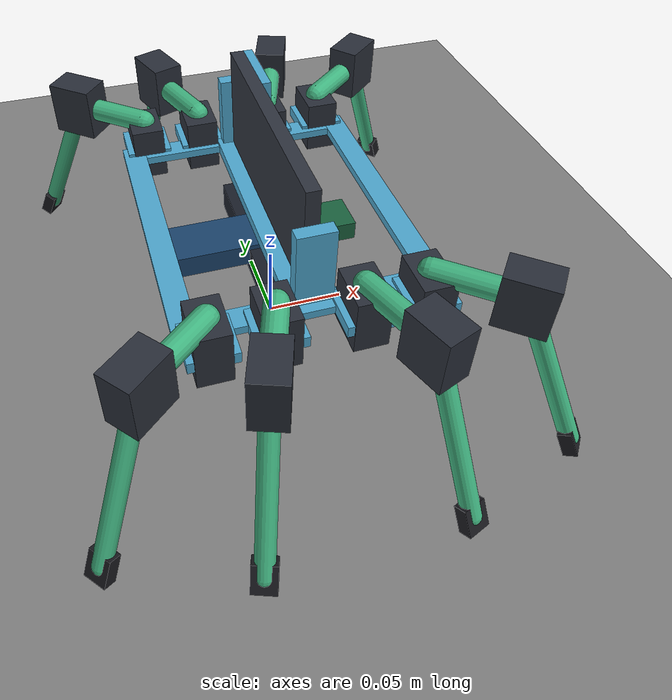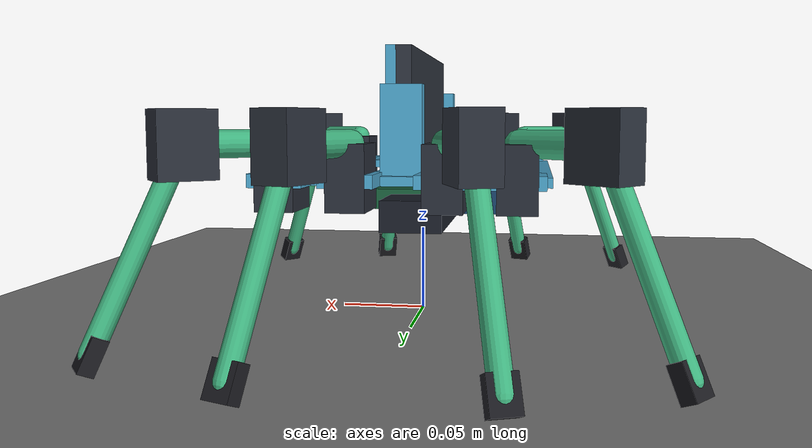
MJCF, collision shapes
<?xml version="1.0" encoding="utf-8"?>
<!-- Generated by generate_model.py; collision profile: validation. -->
<mujoco model="arachne15_validation">
  <compiler angle="radian" meshdir="../../../Sources/Robotics/Assets/arachne15/meshes" autolimits="true"/>
  <option timestep="0.002" gravity="0 0 -9.80665" integrator="implicitfast"/>
  <default>
    <default class="visual">
      <geom contype="0" conaffinity="0" group="2" rgba="0.18 0.22 0.27 1"/>
    </default>
    <default class="collision">
      <geom friction="0.55 0.005 0.0001" condim="3" rgba="0.3 0.65 0.8 0.25"/>
    </default>
    <default class="footprint_collision">
      <geom friction="0.65 0.005 0.0001" condim="3" rgba="0.25 0.7 0.5 0.25"/>
    </default>
    <default class="foot_collision">
      <geom friction="0.9 0.01 0.0002" condim="4" rgba="0.1 0.1 0.12 0.35"/>
    </default>
    <default class="hip_joint">
      <joint type="hinge" range="-0.55 0.55" damping="0.02" armature="0.00005"/>
    </default>
    <default class="knee_joint">
      <joint type="hinge" range="-0.70 0.90" damping="0.02" armature="0.00005"/>
    </default>
  </default>
  <asset>
    <mesh name="chassis_visual" file="chassis.stl" scale="0.001 0.001 0.001"/>
    <mesh name="phone_guide_visual" file="phone_guide.stl" scale="0.001 0.001 0.001"/>
    <mesh name="battery_cradle_visual" file="battery_cradle.stl" scale="0.001 0.001 0.001"/>
    <mesh name="coxa_visual" file="coxa_link.stl" scale="0.001 0.001 0.001"/>
    <mesh name="tibia_visual" file="tibia_link.stl" scale="0.001 0.001 0.001"/>
    <mesh name="foot_visual" file="foot_pad.stl" scale="0.001 0.001 0.001"/>
  </asset>
  <worldbody>
    <geom name="floor" type="plane" size="2 2 0.05" friction="0.9 0.01 0.0002"/>
    <body name="base" pos="0 0 0.0827829838">
      <freejoint/>
      <inertial pos="-0.00114203123 -2.62049155e-19 0.00559625308" mass="0.82748" diaginertia="0.00344118531 0.00132602737 0.00387924709"/>
      <geom name="chassis_visual" class="visual" type="mesh" mesh="chassis_visual"/>
      <geom name="guide_left_visual" class="visual" type="mesh" mesh="phone_guide_visual" pos="0 0.0779 0"/>
      <geom name="guide_right_visual" class="visual" type="mesh" mesh="phone_guide_visual" pos="0 -0.0779 0" quat="0 0 0 1"/>
      <geom name="battery_cradle_visual" class="visual" type="mesh" mesh="battery_cradle_visual" pos="0 0 -0.028"/>
      <geom name="iphone_visual" class="visual" type="box" size="0.004125 0.0733 0.0353" pos="0 0 0.0373" rgba="0.18 0.2 0.24 1"/>
      <geom name="hip_servo_right_0_visual" class="visual" type="box" size="0.01 0.0145 0.017" pos="-0.06 -0.092 0.005" rgba="0.16 0.18 0.22 1"/>
      <geom name="hip_servo_left_0_visual" class="visual" type="box" size="0.01 0.0145 0.017" pos="-0.06 0.092 0.005" rgba="0.16 0.18 0.22 1"/>
      <geom name="hip_servo_right_1_visual" class="visual" type="box" size="0.01 0.0145 0.017" pos="-0.024 -0.092 0.005" rgba="0.16 0.18 0.22 1"/>
      <geom name="hip_servo_left_1_visual" class="visual" type="box" size="0.01 0.0145 0.017" pos="-0.024 0.092 0.005" rgba="0.16 0.18 0.22 1"/>
      <geom name="hip_servo_right_2_visual" class="visual" type="box" size="0.01 0.0145 0.017" pos="0.024 -0.092 0.005" rgba="0.16 0.18 0.22 1"/>
      <geom name="hip_servo_left_2_visual" class="visual" type="box" size="0.01 0.0145 0.017" pos="0.024 0.092 0.005" rgba="0.16 0.18 0.22 1"/>
      <geom name="hip_servo_right_3_visual" class="visual" type="box" size="0.01 0.0145 0.017" pos="0.06 -0.092 0.005" rgba="0.16 0.18 0.22 1"/>
      <geom name="hip_servo_left_3_visual" class="visual" type="box" size="0.01 0.0145 0.017" pos="0.06 0.092 0.005" rgba="0.16 0.18 0.22 1"/>
      <geom name="battery_visual" class="visual" type="box" size="0.0175 0.0525 0.009" pos="0 0 -0.02" rgba="0.10 0.12 0.16 1"/>
      <geom name="bec_visual" class="visual" type="box" size="0.0275 0.015 0.007" pos="-0.034 0 -0.015" rgba="0.10 0.26 0.42 1"/>
      <geom name="control_bridge_visual" class="visual" type="box" size="0.0275 0.0125 0.006" pos="0.024 0 -0.014" rgba="0.10 0.38 0.24 1"/>
      <geom name="base_x_rear" class="collision" type="box" size="0.007 0.088 0.0025" pos="-0.07 0 0.0025" friction="0.55 0.005 0.0001"/>
      <geom name="base_x_front" class="collision" type="box" size="0.007 0.088 0.0025" pos="0.07 0 0.0025" friction="0.55 0.005 0.0001"/>
      <geom name="base_y_right" class="collision" type="box" size="0.063 0.007 0.0025" pos="0 -0.081 0.0025" friction="0.55 0.005 0.0001"/>
      <geom name="base_y_left" class="collision" type="box" size="0.063 0.007 0.0025" pos="0 0.081 0.0025" friction="0.55 0.005 0.0001"/>
      <geom name="phone_spine" class="collision" type="box" size="0.014 0.08 0.0035" pos="0 0 0.0035" friction="0.55 0.005 0.0001"/>
      <geom name="iphone_body" class="collision" type="box" size="0.004125 0.0733 0.0353" pos="0 0 0.0373" friction="0.35 0.005 0.0001"/>
      <geom name="battery" class="collision" type="box" size="0.0175 0.0525 0.009" pos="0 0 -0.02" friction="0.55 0.005 0.0001"/>
      <geom name="hip_pod_right_0" class="collision" type="box" size="0.014 0.014 0.0035" pos="-0.06 -0.092 0.0035" friction="0.55 0.005 0.0001"/>
      <geom name="hip_servo_right_0" class="collision" type="box" size="0.01 0.0145 0.017" pos="-0.06 -0.092 0.005" friction="0.55 0.005 0.0001"/>
      <geom name="hip_pod_left_0" class="collision" type="box" size="0.014 0.014 0.0035" pos="-0.06 0.092 0.0035" friction="0.55 0.005 0.0001"/>
      <geom name="hip_servo_left_0" class="collision" type="box" size="0.01 0.0145 0.017" pos="-0.06 0.092 0.005" friction="0.55 0.005 0.0001"/>
      <geom name="hip_pod_right_1" class="collision" type="box" size="0.014 0.014 0.0035" pos="-0.024 -0.092 0.0035" friction="0.55 0.005 0.0001"/>
      <geom name="hip_servo_right_1" class="collision" type="box" size="0.01 0.0145 0.017" pos="-0.024 -0.092 0.005" friction="0.55 0.005 0.0001"/>
      <geom name="hip_pod_left_1" class="collision" type="box" size="0.014 0.014 0.0035" pos="-0.024 0.092 0.0035" friction="0.55 0.005 0.0001"/>
      <geom name="hip_servo_left_1" class="collision" type="box" size="0.01 0.0145 0.017" pos="-0.024 0.092 0.005" friction="0.55 0.005 0.0001"/>
      <geom name="hip_pod_right_2" class="collision" type="box" size="0.014 0.014 0.0035" pos="0.024 -0.092 0.0035" friction="0.55 0.005 0.0001"/>
      <geom name="hip_servo_right_2" class="collision" type="box" size="0.01 0.0145 0.017" pos="0.024 -0.092 0.005" friction="0.55 0.005 0.0001"/>
      <geom name="hip_pod_left_2" class="collision" type="box" size="0.014 0.014 0.0035" pos="0.024 0.092 0.0035" friction="0.55 0.005 0.0001"/>
      <geom name="hip_servo_left_2" class="collision" type="box" size="0.01 0.0145 0.017" pos="0.024 0.092 0.005" friction="0.55 0.005 0.0001"/>
      <geom name="hip_pod_right_3" class="collision" type="box" size="0.014 0.014 0.0035" pos="0.06 -0.092 0.0035" friction="0.55 0.005 0.0001"/>
      <geom name="hip_servo_right_3" class="collision" type="box" size="0.01 0.0145 0.017" pos="0.06 -0.092 0.005" friction="0.55 0.005 0.0001"/>
      <geom name="hip_pod_left_3" class="collision" type="box" size="0.014 0.014 0.0035" pos="0.06 0.092 0.0035" friction="0.55 0.005 0.0001"/>
      <geom name="hip_servo_left_3" class="collision" type="box" size="0.01 0.0145 0.017" pos="0.06 0.092 0.005" friction="0.55 0.005 0.0001"/>
      <geom name="guide_left" class="collision" type="box" size="0.011 0.004 0.026" pos="0 0.0779 0.026" friction="0.55 0.005 0.0001"/>
      <geom name="guide_right" class="collision" type="box" size="0.011 0.004 0.026" pos="0 -0.0779 0.026" friction="0.55 0.005 0.0001"/>
      <geom name="camera_plateau" class="collision" type="box" size="0.00273 0.021 0.018" pos="0.006855 0.0523 0.0546" friction="0.3 0.005 0.0001"/>
      <geom name="bec" class="collision" type="box" size="0.0275 0.015 0.007" pos="-0.034 0 -0.015" friction="0.55 0.005 0.0001"/>
      <geom name="control_bridge" class="collision" type="box" size="0.0275 0.0125 0.006" pos="0.024 0 -0.014" friction="0.55 0.005 0.0001"/>
      <body name="right_rear_coxa" pos="-0.06 -0.092 0.022" quat="0.342020143 0 0 -0.939692621">
        <inertial pos="0.0446916845 0 -0.000421964667" mass="0.035548" diaginertia="4.40428753e-06 9.52330839e-06 9.12177953e-06"/>
        <joint name="right_rear_hip" class="hip_joint" axis="0 0 1"/>
        <geom name="right_rear_coxa_visual" class="visual" type="mesh" mesh="coxa_visual" pos="0 0 -0.0035"/>
        <geom name="right_rear_coxa_collision" class="footprint_collision" type="capsule" size="0.007" fromto="0 0 0 0.05 0 0"/>
      <geom name="right_rear_knee_servo_visual" class="visual" type="box" size="0.01 0.0145 0.017" pos="0.05 0 0" quat="0.707106781 0 0 0.707106781" rgba="0.16 0.18 0.22 1"/>
        <geom name="right_rear_knee_servo" class="collision" type="box" size="0.01 0.0145 0.017" pos="0.05 0 0" quat="0.707106781 0 0 0.707106781"/>
        <body name="right_rear_tibia" pos="0.05 0 0" quat="0.843391446 0 0.537299608 0">
          <inertial pos="0.0531758156 0 0.000739809129" mass="0.013517" diaginertia="3.59758367e-07 1.88701864e-05 1.89852491e-05"/>
          <joint name="right_rear_knee" class="knee_joint" axis="0 1 0"/>
          <geom name="right_rear_tibia_visual" class="visual" type="mesh" mesh="tibia_visual" pos="0 0 -0.0045"/>
          <geom name="right_rear_foot_visual" class="visual" type="mesh" mesh="foot_visual" pos="0.105 0 0"/>
          <geom name="right_rear_tibia_collision" class="footprint_collision" type="capsule" size="0.0055" fromto="0.008 0 0 0.105 0 0"/>
          <geom name="right_rear_foot_collision" class="foot_collision" type="box" size="0.00875 0.007 0.004" pos="0.105 0 0"/>
        </body>
      </body>
      <body name="right_mid_rear_coxa" pos="-0.024 -0.092 0.022" quat="0.573576436 0 0 -0.819152044">
        <inertial pos="0.0446916845 0 -0.000421964667" mass="0.035548" diaginertia="4.40428753e-06 9.52330839e-06 9.12177953e-06"/>
        <joint name="right_mid_rear_hip" class="hip_joint" axis="0 0 1"/>
        <geom name="right_mid_rear_coxa_visual" class="visual" type="mesh" mesh="coxa_visual" pos="0 0 -0.0035"/>
        <geom name="right_mid_rear_coxa_collision" class="footprint_collision" type="capsule" size="0.007" fromto="0 0 0 0.05 0 0"/>
      <geom name="right_mid_rear_knee_servo_visual" class="visual" type="box" size="0.01 0.0145 0.017" pos="0.05 0 0" quat="0.707106781 0 0 0.707106781" rgba="0.16 0.18 0.22 1"/>
        <geom name="right_mid_rear_knee_servo" class="collision" type="box" size="0.01 0.0145 0.017" pos="0.05 0 0" quat="0.707106781 0 0 0.707106781"/>
        <body name="right_mid_rear_tibia" pos="0.05 0 0" quat="0.843391446 0 0.537299608 0">
          <inertial pos="0.0531758156 0 0.000739809129" mass="0.013517" diaginertia="3.59758367e-07 1.88701864e-05 1.89852491e-05"/>
          <joint name="right_mid_rear_knee" class="knee_joint" axis="0 1 0"/>
          <geom name="right_mid_rear_tibia_visual" class="visual" type="mesh" mesh="tibia_visual" pos="0 0 -0.0045"/>
          <geom name="right_mid_rear_foot_visual" class="visual" type="mesh" mesh="foot_visual" pos="0.105 0 0"/>
          <geom name="right_mid_rear_tibia_collision" class="footprint_collision" type="capsule" size="0.0055" fromto="0.008 0 0 0.105 0 0"/>
          <geom name="right_mid_rear_foot_collision" class="foot_collision" type="box" size="0.00875 0.007 0.004" pos="0.105 0 0"/>
        </body>
      </body>
      <body name="right_mid_front_coxa" pos="0.024 -0.092 0.022" quat="0.819152044 0 0 -0.573576436">
        <inertial pos="0.0446916845 0 -0.000421964667" mass="0.035548" diaginertia="4.40428753e-06 9.52330839e-06 9.12177953e-06"/>
        <joint name="right_mid_front_hip" class="hip_joint" axis="0 0 1"/>
        <geom name="right_mid_front_coxa_visual" class="visual" type="mesh" mesh="coxa_visual" pos="0 0 -0.0035"/>
        <geom name="right_mid_front_coxa_collision" class="footprint_collision" type="capsule" size="0.007" fromto="0 0 0 0.05 0 0"/>
      <geom name="right_mid_front_knee_servo_visual" class="visual" type="box" size="0.01 0.0145 0.017" pos="0.05 0 0" quat="0.707106781 0 0 0.707106781" rgba="0.16 0.18 0.22 1"/>
        <geom name="right_mid_front_knee_servo" class="collision" type="box" size="0.01 0.0145 0.017" pos="0.05 0 0" quat="0.707106781 0 0 0.707106781"/>
        <body name="right_mid_front_tibia" pos="0.05 0 0" quat="0.843391446 0 0.537299608 0">
          <inertial pos="0.0531758156 0 0.000739809129" mass="0.013517" diaginertia="3.59758367e-07 1.88701864e-05 1.89852491e-05"/>
          <joint name="right_mid_front_knee" class="knee_joint" axis="0 1 0"/>
          <geom name="right_mid_front_tibia_visual" class="visual" type="mesh" mesh="tibia_visual" pos="0 0 -0.0045"/>
          <geom name="right_mid_front_foot_visual" class="visual" type="mesh" mesh="foot_visual" pos="0.105 0 0"/>
          <geom name="right_mid_front_tibia_collision" class="footprint_collision" type="capsule" size="0.0055" fromto="0.008 0 0 0.105 0 0"/>
          <geom name="right_mid_front_foot_collision" class="foot_collision" type="box" size="0.00875 0.007 0.004" pos="0.105 0 0"/>
        </body>
      </body>
      <body name="right_front_coxa" pos="0.06 -0.092 0.022" quat="0.939692621 0 0 -0.342020143">
        <inertial pos="0.0446916845 0 -0.000421964667" mass="0.035548" diaginertia="4.40428753e-06 9.52330839e-06 9.12177953e-06"/>
        <joint name="right_front_hip" class="hip_joint" axis="0 0 1"/>
        <geom name="right_front_coxa_visual" class="visual" type="mesh" mesh="coxa_visual" pos="0 0 -0.0035"/>
        <geom name="right_front_coxa_collision" class="footprint_collision" type="capsule" size="0.007" fromto="0 0 0 0.05 0 0"/>
      <geom name="right_front_knee_servo_visual" class="visual" type="box" size="0.01 0.0145 0.017" pos="0.05 0 0" quat="0.707106781 0 0 0.707106781" rgba="0.16 0.18 0.22 1"/>
        <geom name="right_front_knee_servo" class="collision" type="box" size="0.01 0.0145 0.017" pos="0.05 0 0" quat="0.707106781 0 0 0.707106781"/>
        <body name="right_front_tibia" pos="0.05 0 0" quat="0.843391446 0 0.537299608 0">
          <inertial pos="0.0531758156 0 0.000739809129" mass="0.013517" diaginertia="3.59758367e-07 1.88701864e-05 1.89852491e-05"/>
          <joint name="right_front_knee" class="knee_joint" axis="0 1 0"/>
          <geom name="right_front_tibia_visual" class="visual" type="mesh" mesh="tibia_visual" pos="0 0 -0.0045"/>
          <geom name="right_front_foot_visual" class="visual" type="mesh" mesh="foot_visual" pos="0.105 0 0"/>
          <geom name="right_front_tibia_collision" class="footprint_collision" type="capsule" size="0.0055" fromto="0.008 0 0 0.105 0 0"/>
          <geom name="right_front_foot_collision" class="foot_collision" type="box" size="0.00875 0.007 0.004" pos="0.105 0 0"/>
        </body>
      </body>
      <body name="left_rear_coxa" pos="-0.06 0.092 0.022" quat="0.342020143 0 0 0.939692621">
        <inertial pos="0.0446916845 0 -0.000421964667" mass="0.035548" diaginertia="4.40428753e-06 9.52330839e-06 9.12177953e-06"/>
        <joint name="left_rear_hip" class="hip_joint" axis="0 0 1"/>
        <geom name="left_rear_coxa_visual" class="visual" type="mesh" mesh="coxa_visual" pos="0 0 -0.0035"/>
        <geom name="left_rear_coxa_collision" class="footprint_collision" type="capsule" size="0.007" fromto="0 0 0 0.05 0 0"/>
      <geom name="left_rear_knee_servo_visual" class="visual" type="box" size="0.01 0.0145 0.017" pos="0.05 0 0" quat="0.707106781 0 0 0.707106781" rgba="0.16 0.18 0.22 1"/>
        <geom name="left_rear_knee_servo" class="collision" type="box" size="0.01 0.0145 0.017" pos="0.05 0 0" quat="0.707106781 0 0 0.707106781"/>
        <body name="left_rear_tibia" pos="0.05 0 0" quat="0.843391446 0 0.537299608 0">
          <inertial pos="0.0531758156 0 0.000739809129" mass="0.013517" diaginertia="3.59758367e-07 1.88701864e-05 1.89852491e-05"/>
          <joint name="left_rear_knee" class="knee_joint" axis="0 1 0"/>
          <geom name="left_rear_tibia_visual" class="visual" type="mesh" mesh="tibia_visual" pos="0 0 -0.0045"/>
          <geom name="left_rear_foot_visual" class="visual" type="mesh" mesh="foot_visual" pos="0.105 0 0"/>
          <geom name="left_rear_tibia_collision" class="footprint_collision" type="capsule" size="0.0055" fromto="0.008 0 0 0.105 0 0"/>
          <geom name="left_rear_foot_collision" class="foot_collision" type="box" size="0.00875 0.007 0.004" pos="0.105 0 0"/>
        </body>
      </body>
      <body name="left_mid_rear_coxa" pos="-0.024 0.092 0.022" quat="0.573576436 0 0 0.819152044">
        <inertial pos="0.0446916845 0 -0.000421964667" mass="0.035548" diaginertia="4.40428753e-06 9.52330839e-06 9.12177953e-06"/>
        <joint name="left_mid_rear_hip" class="hip_joint" axis="0 0 1"/>
        <geom name="left_mid_rear_coxa_visual" class="visual" type="mesh" mesh="coxa_visual" pos="0 0 -0.0035"/>
        <geom name="left_mid_rear_coxa_collision" class="footprint_collision" type="capsule" size="0.007" fromto="0 0 0 0.05 0 0"/>
      <geom name="left_mid_rear_knee_servo_visual" class="visual" type="box" size="0.01 0.0145 0.017" pos="0.05 0 0" quat="0.707106781 0 0 0.707106781" rgba="0.16 0.18 0.22 1"/>
        <geom name="left_mid_rear_knee_servo" class="collision" type="box" size="0.01 0.0145 0.017" pos="0.05 0 0" quat="0.707106781 0 0 0.707106781"/>
        <body name="left_mid_rear_tibia" pos="0.05 0 0" quat="0.843391446 0 0.537299608 0">
          <inertial pos="0.0531758156 0 0.000739809129" mass="0.013517" diaginertia="3.59758367e-07 1.88701864e-05 1.89852491e-05"/>
          <joint name="left_mid_rear_knee" class="knee_joint" axis="0 1 0"/>
          <geom name="left_mid_rear_tibia_visual" class="visual" type="mesh" mesh="tibia_visual" pos="0 0 -0.0045"/>
          <geom name="left_mid_rear_foot_visual" class="visual" type="mesh" mesh="foot_visual" pos="0.105 0 0"/>
          <geom name="left_mid_rear_tibia_collision" class="footprint_collision" type="capsule" size="0.0055" fromto="0.008 0 0 0.105 0 0"/>
          <geom name="left_mid_rear_foot_collision" class="foot_collision" type="box" size="0.00875 0.007 0.004" pos="0.105 0 0"/>
        </body>
      </body>
      <body name="left_mid_front_coxa" pos="0.024 0.092 0.022" quat="0.819152044 0 0 0.573576436">
        <inertial pos="0.0446916845 0 -0.000421964667" mass="0.035548" diaginertia="4.40428753e-06 9.52330839e-06 9.12177953e-06"/>
        <joint name="left_mid_front_hip" class="hip_joint" axis="0 0 1"/>
        <geom name="left_mid_front_coxa_visual" class="visual" type="mesh" mesh="coxa_visual" pos="0 0 -0.0035"/>
        <geom name="left_mid_front_coxa_collision" class="footprint_collision" type="capsule" size="0.007" fromto="0 0 0 0.05 0 0"/>
      <geom name="left_mid_front_knee_servo_visual" class="visual" type="box" size="0.01 0.0145 0.017" pos="0.05 0 0" quat="0.707106781 0 0 0.707106781" rgba="0.16 0.18 0.22 1"/>
        <geom name="left_mid_front_knee_servo" class="collision" type="box" size="0.01 0.0145 0.017" pos="0.05 0 0" quat="0.707106781 0 0 0.707106781"/>
        <body name="left_mid_front_tibia" pos="0.05 0 0" quat="0.843391446 0 0.537299608 0">
          <inertial pos="0.0531758156 0 0.000739809129" mass="0.013517" diaginertia="3.59758367e-07 1.88701864e-05 1.89852491e-05"/>
          <joint name="left_mid_front_knee" class="knee_joint" axis="0 1 0"/>
          <geom name="left_mid_front_tibia_visual" class="visual" type="mesh" mesh="tibia_visual" pos="0 0 -0.0045"/>
          <geom name="left_mid_front_foot_visual" class="visual" type="mesh" mesh="foot_visual" pos="0.105 0 0"/>
          <geom name="left_mid_front_tibia_collision" class="footprint_collision" type="capsule" size="0.0055" fromto="0.008 0 0 0.105 0 0"/>
          <geom name="left_mid_front_foot_collision" class="foot_collision" type="box" size="0.00875 0.007 0.004" pos="0.105 0 0"/>
        </body>
      </body>
      <body name="left_front_coxa" pos="0.06 0.092 0.022" quat="0.939692621 0 0 0.342020143">
        <inertial pos="0.0446916845 0 -0.000421964667" mass="0.035548" diaginertia="4.40428753e-06 9.52330839e-06 9.12177953e-06"/>
        <joint name="left_front_hip" class="hip_joint" axis="0 0 1"/>
        <geom name="left_front_coxa_visual" class="visual" type="mesh" mesh="coxa_visual" pos="0 0 -0.0035"/>
        <geom name="left_front_coxa_collision" class="footprint_collision" type="capsule" size="0.007" fromto="0 0 0 0.05 0 0"/>
      <geom name="left_front_knee_servo_visual" class="visual" type="box" size="0.01 0.0145 0.017" pos="0.05 0 0" quat="0.707106781 0 0 0.707106781" rgba="0.16 0.18 0.22 1"/>
        <geom name="left_front_knee_servo" class="collision" type="box" size="0.01 0.0145 0.017" pos="0.05 0 0" quat="0.707106781 0 0 0.707106781"/>
        <body name="left_front_tibia" pos="0.05 0 0" quat="0.843391446 0 0.537299608 0">
          <inertial pos="0.0531758156 0 0.000739809129" mass="0.013517" diaginertia="3.59758367e-07 1.88701864e-05 1.89852491e-05"/>
          <joint name="left_front_knee" class="knee_joint" axis="0 1 0"/>
          <geom name="left_front_tibia_visual" class="visual" type="mesh" mesh="tibia_visual" pos="0 0 -0.0045"/>
          <geom name="left_front_foot_visual" class="visual" type="mesh" mesh="foot_visual" pos="0.105 0 0"/>
          <geom name="left_front_tibia_collision" class="footprint_collision" type="capsule" size="0.0055" fromto="0.008 0 0 0.105 0 0"/>
          <geom name="left_front_foot_collision" class="foot_collision" type="box" size="0.00875 0.007 0.004" pos="0.105 0 0"/>
        </body>
      </body>
    </body>
  </worldbody>
  <contact>
    <exclude body1="base" body2="right_rear_coxa"/>
    <exclude body1="right_rear_coxa" body2="right_rear_tibia"/>
    <exclude body1="base" body2="right_mid_rear_coxa"/>
    <exclude body1="right_mid_rear_coxa" body2="right_mid_rear_tibia"/>
    <exclude body1="base" body2="right_mid_front_coxa"/>
    <exclude body1="right_mid_front_coxa" body2="right_mid_front_tibia"/>
    <exclude body1="base" body2="right_front_coxa"/>
    <exclude body1="right_front_coxa" body2="right_front_tibia"/>
    <exclude body1="base" body2="left_rear_coxa"/>
    <exclude body1="left_rear_coxa" body2="left_rear_tibia"/>
    <exclude body1="base" body2="left_mid_rear_coxa"/>
    <exclude body1="left_mid_rear_coxa" body2="left_mid_rear_tibia"/>
    <exclude body1="base" body2="left_mid_front_coxa"/>
    <exclude body1="left_mid_front_coxa" body2="left_mid_front_tibia"/>
    <exclude body1="base" body2="left_front_coxa"/>
    <exclude body1="left_front_coxa" body2="left_front_tibia"/>
  </contact>
  <actuator>
    <motor name="right_rear_hip_motor" joint="right_rear_hip" ctrlrange="-0.186 0.186" ctrllimited="true"/>
    <motor name="right_rear_knee_motor" joint="right_rear_knee" ctrlrange="-0.186 0.186" ctrllimited="true"/>
    <motor name="right_mid_rear_hip_motor" joint="right_mid_rear_hip" ctrlrange="-0.186 0.186" ctrllimited="true"/>
    <motor name="right_mid_rear_knee_motor" joint="right_mid_rear_knee" ctrlrange="-0.186 0.186" ctrllimited="true"/>
    <motor name="right_mid_front_hip_motor" joint="right_mid_front_hip" ctrlrange="-0.186 0.186" ctrllimited="true"/>
    <motor name="right_mid_front_knee_motor" joint="right_mid_front_knee" ctrlrange="-0.186 0.186" ctrllimited="true"/>
    <motor name="right_front_hip_motor" joint="right_front_hip" ctrlrange="-0.186 0.186" ctrllimited="true"/>
    <motor name="right_front_knee_motor" joint="right_front_knee" ctrlrange="-0.186 0.186" ctrllimited="true"/>
    <motor name="left_rear_hip_motor" joint="left_rear_hip" ctrlrange="-0.186 0.186" ctrllimited="true"/>
    <motor name="left_rear_knee_motor" joint="left_rear_knee" ctrlrange="-0.186 0.186" ctrllimited="true"/>
    <motor name="left_mid_rear_hip_motor" joint="left_mid_rear_hip" ctrlrange="-0.186 0.186" ctrllimited="true"/>
    <motor name="left_mid_rear_knee_motor" joint="left_mid_rear_knee" ctrlrange="-0.186 0.186" ctrllimited="true"/>
    <motor name="left_mid_front_hip_motor" joint="left_mid_front_hip" ctrlrange="-0.186 0.186" ctrllimited="true"/>
    <motor name="left_mid_front_knee_motor" joint="left_mid_front_knee" ctrlrange="-0.186 0.186" ctrllimited="true"/>
    <motor name="left_front_hip_motor" joint="left_front_hip" ctrlrange="-0.186 0.186" ctrllimited="true"/>
    <motor name="left_front_knee_motor" joint="left_front_knee" ctrlrange="-0.186 0.186" ctrllimited="true"/>
  </actuator>
</mujoco>
